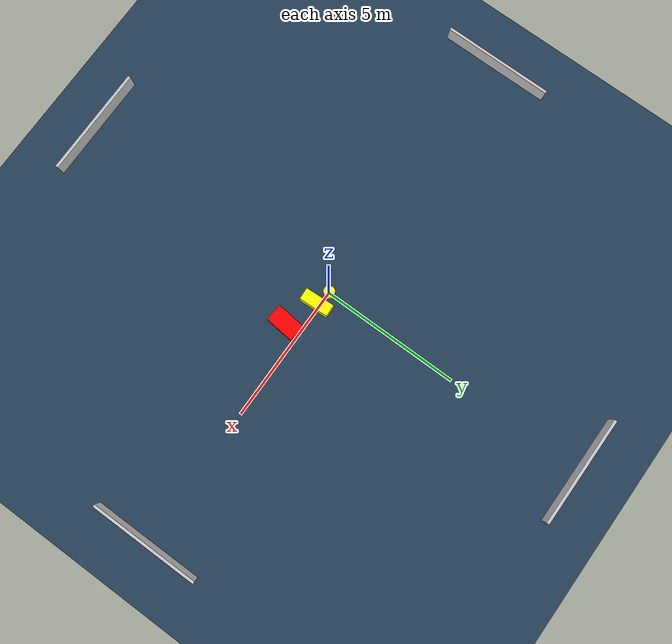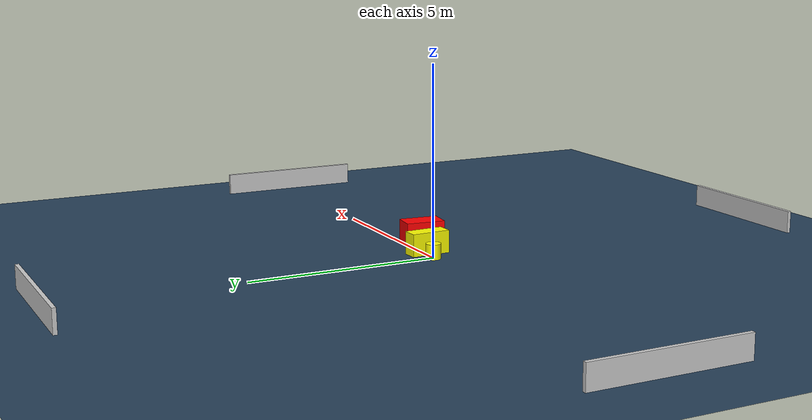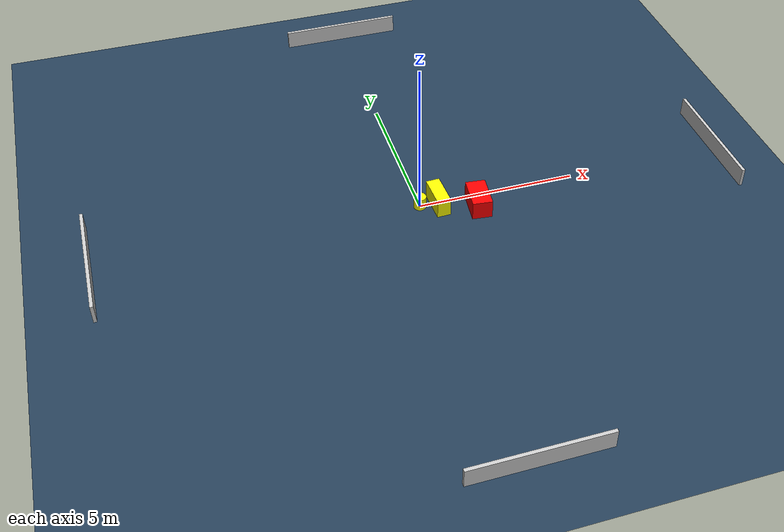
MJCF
<?xml version="1.0" ?>
<mujoco model="generated_environment">
  <option timestep="0.01" integrator="RK4" cone="elliptic"/>
  <default>
    <geom density="1"/>
  </default>
  <asset>
    <texture builtin="gradient" height="3072" name="skybox" rgb1="0.3 0.5 0.7" rgb2="0 0 0" type="skybox" width="512"/>
    <texture builtin="checker" height="300" name="groundplane" rgb1="0.2 0.3 0.4" rgb2="0.1 0.2 0.3" type="2d" width="300"/>
    <material name="groundplane" reflectance="0.2" texrepeat="5 5" texture="groundplane"/>
  </asset>
  <worldbody>
    <light dir="0 0 -1" directional="true" pos="0 0 1.5"/>
    <geom condim="3" friction="0.5 0.005 0.001" material="groundplane" name="floor" pos="0 0 0" size="0 0 0.05" type="plane"/>
    <body name="walls">
      <geom name="wall_1" condim="4" pos="-10.0 0.0 0.3" rgba="0.800000011920929 0.800000011920929 0.800000011920929 1.0" size="0.05 2.0 0.3" type="box"/>
      <geom name="wall_2" condim="4" pos="10.0 0.0 0.3" rgba="0.800000011920929 0.800000011920929 0.800000011920929 1.0" size="0.05 2.0 0.3" type="box"/>
      <geom name="wall_3" condim="4" pos="0.0 -10.0 0.3" rgba="0.800000011920929 0.800000011920929 0.800000011920929 1.0" size="2.0 0.05 0.3" type="box"/>
      <geom name="wall_4" condim="4" pos="0.0 10.0 0.3" rgba="0.800000011920929 0.800000011920929 0.800000011920929 1.0" size="2.0 0.05 0.3" type="box"/>
    </body>
    <body name="robot">
      <joint name="joint_x" type="slide" pos="0 0 0" axis="1 0 0"/>
      <joint name="joint_y" type="slide" pos="0 0 0" axis="0 1 0"/>
      <geom name="robot" type="cylinder" pos="0.0 0.0 0.2" size="0.2 0.2 0.0" mass="5.0" friction="1.0 0.005 0.0001" condim="4" rgba="1.0 1.0 0.0 1.0"/>
    </body>
    <body name="obstacle_1_movable">
      <geom name="obstacle_1_movable" condim="4" pos="0.5577665137462638 -0.11047573790483765 0.3" euler="0 0 2.479215515340747" friction="0.0 0.005 0.001" rgba="1.0 1.0 0.0 1.0" size="0.21489516336893744 0.5272716288559767 0.3" type="box" mass="0.1"/>
      <joint type="free"/>
    </body>
    <body name="obstacle_2_static">
      <geom name="obstacle_2_static" condim="4" pos="1.7228771474211926 -0.5452271571215399 0.3" euler="0 0 84.1075242232363" friction="0.0 0.005 0.001" rgba="1.0 0.0 0.0 1.0" size="0.5263298736646039 0.31103005121552196 0.3" type="box"/>
    </body>
  </worldbody>
  <actuator>
    <motor name="actuator_x" joint="joint_x" gear="1" ctrlrange="-1 1"/>
    <motor name="actuator_y" joint="joint_y" gear="1" ctrlrange="-1 1"/>
  </actuator>
</mujoco>
